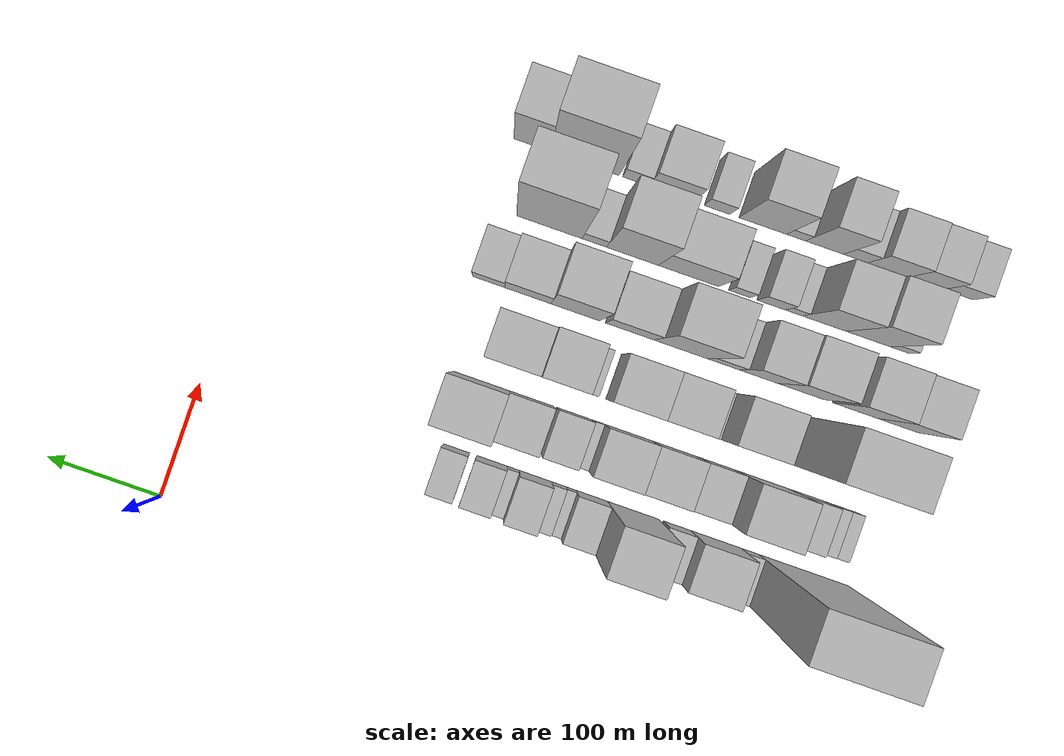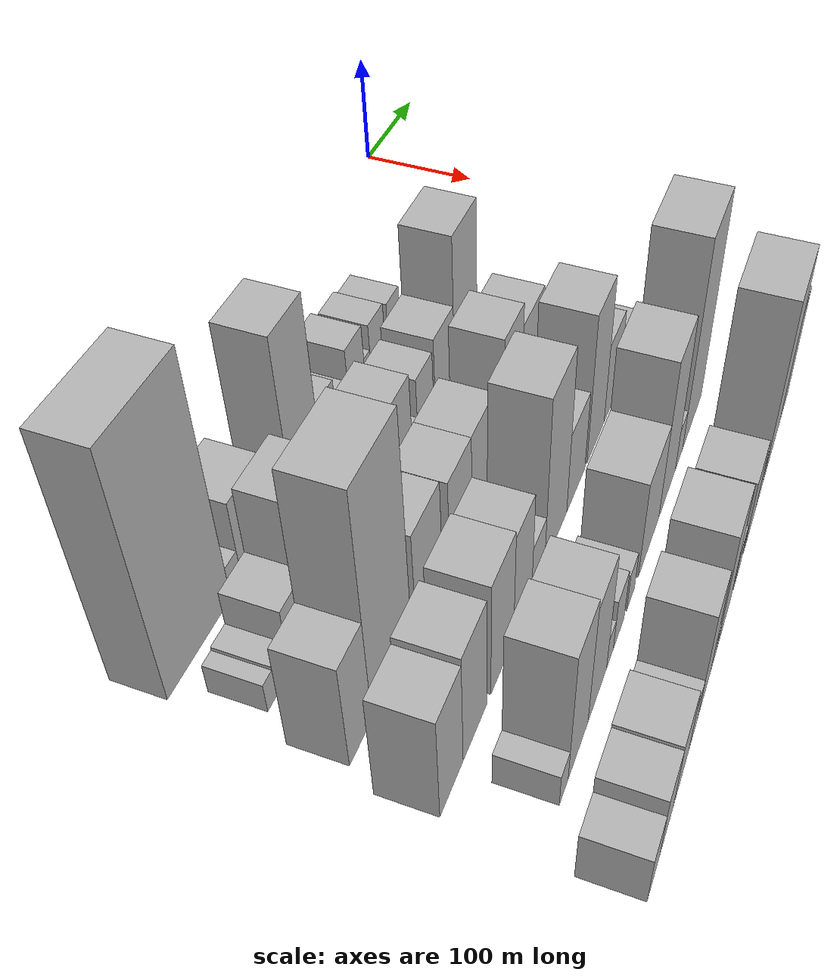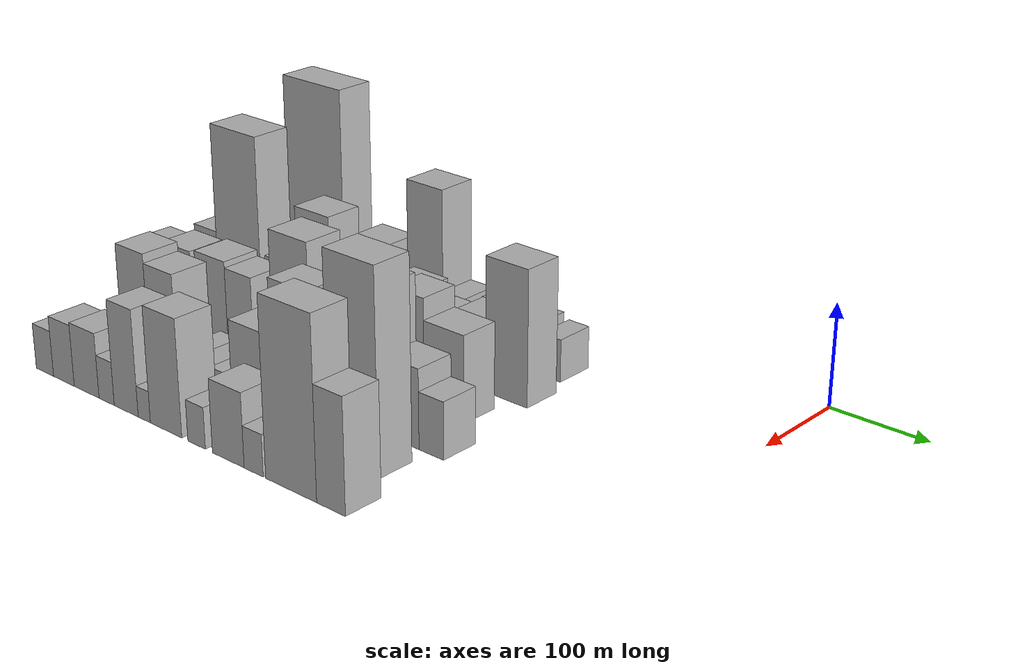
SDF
<sdf version="1.6">
 <world name="default">
  <model name="building_13">
   <static>1</static>
   <pose>100.0000 -526.7478 0 0.000000 0.000000 0.000000</pose>
   <link name="link">
    <pose>0 0 109.50 0 0 0</pose>
    <collision name="collision"><geometry><box><size>40.0000 79.1632 219.0000</size></box></geometry></collision>
    <visual name="visual">
     <cast_shadows>0</cast_shadows>
     <geometry><box><size>40.0000 79.1632 219.0000</size></box></geometry>
     <material>
      <script>
       <uri>model://HANNAS_wall/materials/scripts</uri>
       <uri>model://HANNAS_wall/materials/textures</uri>
       <name>vrc/HANNAS_wall</name>
      </script>
     </material>
    </visual>
   </link>
  </model>
  <model name="building_14">
   <static>1</static>
   <pose>100.0000 -479.6001 0 0.000000 0.000000 0.000000</pose>
   <link name="link">
    <pose>0 0 15.00 0 0 0</pose>
    <collision name="collision"><geometry><box><size>40.0000 15.1322 30.0000</size></box></geometry></collision>
    <visual name="visual">
     <cast_shadows>0</cast_shadows>
     <geometry><box><size>40.0000 15.1322 30.0000</size></box></geometry>
     <material>
      <script>
       <uri>model://HANNAS_wall/materials/scripts</uri>
       <uri>model://HANNAS_wall/materials/textures</uri>
       <name>vrc/HANNAS_wall</name>
      </script>
     </material>
    </visual>
   </link>
  </model>
  <model name="building_15">
   <static>1</static>
   <pose>100.0000 -449.6756 0 0.000000 0.000000 0.000000</pose>
   <link name="link">
    <pose>0 0 37.50 0 0 0</pose>
    <collision name="collision"><geometry><box><size>40.0000 44.7167 75.0000</size></box></geometry></collision>
    <visual name="visual">
     <cast_shadows>0</cast_shadows>
     <geometry><box><size>40.0000 44.7167 75.0000</size></box></geometry>
     <material>
      <script>
       <uri>model://HANNAS_wall/materials/scripts</uri>
       <uri>model://HANNAS_wall/materials/textures</uri>
       <name>vrc/HANNAS_wall</name>
      </script>
     </material>
    </visual>
   </link>
  </model>
  <model name="building_16">
   <static>1</static>
   <pose>100.0000 -415.2296 0 0.000000 0.000000 0.000000</pose>
   <link name="link">
    <pose>0 0 21.00 0 0 0</pose>
    <collision name="collision"><geometry><box><size>40.0000 24.1753 42.0000</size></box></geometry></collision>
    <visual name="visual">
     <cast_shadows>0</cast_shadows>
     <geometry><box><size>40.0000 24.1753 42.0000</size></box></geometry>
     <material>
      <script>
       <uri>model://HANNAS_wall/materials/scripts</uri>
       <uri>model://HANNAS_wall/materials/textures</uri>
       <name>vrc/HANNAS_wall</name>
      </script>
     </material>
    </visual>
   </link>
  </model>
  <model name="building_17">
   <static>1</static>
   <pose>100.0000 -376.3590 0 0.000000 0.000000 0.000000</pose>
   <link name="link">
    <pose>0 0 75.00 0 0 0</pose>
    <collision name="collision"><geometry><box><size>40.0000 45.5659 150.0000</size></box></geometry></collision>
    <visual name="visual">
     <cast_shadows>0</cast_shadows>
     <geometry><box><size>40.0000 45.5659 150.0000</size></box></geometry>
     <material>
      <script>
       <uri>model://HANNAS_wall/materials/scripts</uri>
       <uri>model://HANNAS_wall/materials/textures</uri>
       <name>vrc/HANNAS_wall</name>
      </script>
     </material>
    </visual>
   </link>
  </model>
  <model name="building_18">
   <static>1</static>
   <pose>100.0000 -339.6521 0 0.000000 0.000000 0.000000</pose>
   <link name="link">
    <pose>0 0 24.00 0 0 0</pose>
    <collision name="collision"><geometry><box><size>40.0000 27.8479 48.0000</size></box></geometry></collision>
    <visual name="visual">
     <cast_shadows>0</cast_shadows>
     <geometry><box><size>40.0000 27.8479 48.0000</size></box></geometry>
     <material>
      <script>
       <uri>model://HANNAS_wall/materials/scripts</uri>
       <uri>model://HANNAS_wall/materials/textures</uri>
       <name>vrc/HANNAS_wall</name>
      </script>
     </material>
    </visual>
   </link>
  </model>
  <model name="building_19">
   <static>1</static>
   <pose>100.0000 -321.3916 0 0.000000 0.000000 0.000000</pose>
   <link name="link">
    <pose>0 0 10.50 0 0 0</pose>
    <collision name="collision"><geometry><box><size>40.0000 8.6731 21.0000</size></box></geometry></collision>
    <visual name="visual">
     <cast_shadows>0</cast_shadows>
     <geometry><box><size>40.0000 8.6731 21.0000</size></box></geometry>
     <material>
      <script>
       <uri>model://HANNAS_wall/materials/scripts</uri>
       <uri>model://HANNAS_wall/materials/textures</uri>
       <name>vrc/HANNAS_wall</name>
      </script>
     </material>
    </visual>
   </link>
  </model>
  <model name="building_20">
   <static>1</static>
   <pose>100.0000 -310.6062 0 0.000000 0.000000 0.000000</pose>
   <link name="link">
    <pose>0 0 13.50 0 0 0</pose>
    <collision name="collision"><geometry><box><size>40.0000 12.8976 27.0000</size></box></geometry></collision>
    <visual name="visual">
     <cast_shadows>0</cast_shadows>
     <geometry><box><size>40.0000 12.8976 27.0000</size></box></geometry>
     <material>
      <script>
       <uri>model://HANNAS_wall/materials/scripts</uri>
       <uri>model://HANNAS_wall/materials/textures</uri>
       <name>vrc/HANNAS_wall</name>
      </script>
     </material>
    </visual>
   </link>
  </model>
  <model name="building_21">
   <static>1</static>
   <pose>100.0000 -289.8967 0 0.000000 0.000000 0.000000</pose>
   <link name="link">
    <pose>0 0 28.50 0 0 0</pose>
    <collision name="collision"><geometry><box><size>40.0000 28.5214 57.0000</size></box></geometry></collision>
    <visual name="visual">
     <cast_shadows>0</cast_shadows>
     <geometry><box><size>40.0000 28.5214 57.0000</size></box></geometry>
     <material>
      <script>
       <uri>model://HANNAS_wall/materials/scripts</uri>
       <uri>model://HANNAS_wall/materials/textures</uri>
       <name>vrc/HANNAS_wall</name>
      </script>
     </material>
    </visual>
   </link>
  </model>
  <model name="building_22">
   <static>1</static>
   <pose>100.0000 -270.2355 0 0.000000 0.000000 0.000000</pose>
   <link name="link">
    <pose>0 0 12.00 0 0 0</pose>
    <collision name="collision"><geometry><box><size>40.0000 10.8011 24.0000</size></box></geometry></collision>
    <visual name="visual">
     <cast_shadows>0</cast_shadows>
     <geometry><box><size>40.0000 10.8011 24.0000</size></box></geometry>
     <material>
      <script>
       <uri>model://HANNAS_wall/materials/scripts</uri>
       <uri>model://HANNAS_wall/materials/textures</uri>
       <name>vrc/HANNAS_wall</name>
      </script>
     </material>
    </visual>
   </link>
  </model>
  <model name="building_23">
   <static>1</static>
   <pose>100.0000 -251.3677 0 0.000000 0.000000 0.000000</pose>
   <link name="link">
    <pose>0 0 24.00 0 0 0</pose>
    <collision name="collision"><geometry><box><size>40.0000 26.9344 48.0000</size></box></geometry></collision>
    <visual name="visual">
     <cast_shadows>0</cast_shadows>
     <geometry><box><size>40.0000 26.9344 48.0000</size></box></geometry>
     <material>
      <script>
       <uri>model://HANNAS_wall/materials/scripts</uri>
       <uri>model://HANNAS_wall/materials/textures</uri>
       <name>vrc/HANNAS_wall</name>
      </script>
     </material>
    </visual>
   </link>
  </model>
  <model name="building_24">
   <static>1</static>
   <pose>100.0000 -220.2358 0 0.000000 0.000000 0.000000</pose>
   <link name="link">
    <pose>0 0 21.00 0 0 0</pose>
    <collision name="collision"><geometry><box><size>40.0000 23.3294 42.0000</size></box></geometry></collision>
    <visual name="visual">
     <cast_shadows>0</cast_shadows>
     <geometry><box><size>40.0000 23.3294 42.0000</size></box></geometry>
     <material>
      <script>
       <uri>model://HANNAS_wall/materials/scripts</uri>
       <uri>model://HANNAS_wall/materials/textures</uri>
       <name>vrc/HANNAS_wall</name>
      </script>
     </material>
    </visual>
   </link>
  </model>
  <model name="building_71">
   <static>1</static>
   <pose>160.0000 -547.1746 0 0.000000 0.000000 0.000000</pose>
   <link name="link">
    <pose>0 0 13.50 0 0 0</pose>
    <collision name="collision"><geometry><box><size>40.0000 11.5638 27.0000</size></box></geometry></collision>
    <visual name="visual">
     <cast_shadows>0</cast_shadows>
     <geometry><box><size>40.0000 11.5638 27.0000</size></box></geometry>
     <material>
      <script>
       <uri>model://HANNAS_wall/materials/scripts</uri>
       <uri>model://HANNAS_wall/materials/textures</uri>
       <name>vrc/HANNAS_wall</name>
      </script>
     </material>
    </visual>
   </link>
  </model>
  <model name="building_72">
   <static>1</static>
   <pose>160.0000 -532.4217 0 0.000000 0.000000 0.000000</pose>
   <link name="link">
    <pose>0 0 15.00 0 0 0</pose>
    <collision name="collision"><geometry><box><size>40.0000 17.9421 30.0000</size></box></geometry></collision>
    <visual name="visual">
     <cast_shadows>0</cast_shadows>
     <geometry><box><size>40.0000 17.9421 30.0000</size></box></geometry>
     <material>
      <script>
       <uri>model://HANNAS_wall/materials/scripts</uri>
       <uri>model://HANNAS_wall/materials/textures</uri>
       <name>vrc/HANNAS_wall</name>
      </script>
     </material>
    </visual>
   </link>
  </model>
  <model name="building_73">
   <static>1</static>
   <pose>160.0000 -507.1314 0 0.000000 0.000000 0.000000</pose>
   <link name="link">
    <pose>0 0 30.00 0 0 0</pose>
    <collision name="collision"><geometry><box><size>40.0000 32.6385 60.0000</size></box></geometry></collision>
    <visual name="visual">
     <cast_shadows>0</cast_shadows>
     <geometry><box><size>40.0000 32.6385 60.0000</size></box></geometry>
     <material>
      <script>
       <uri>model://HANNAS_wall/materials/scripts</uri>
       <uri>model://HANNAS_wall/materials/textures</uri>
       <name>vrc/HANNAS_wall</name>
      </script>
     </material>
    </visual>
   </link>
  </model>
  <model name="building_74">
   <static>1</static>
   <pose>160.0000 -467.6088 0 0.000000 0.000000 0.000000</pose>
   <link name="link">
    <pose>0 0 58.50 0 0 0</pose>
    <collision name="collision"><geometry><box><size>40.0000 46.4066 117.0000</size></box></geometry></collision>
    <visual name="visual">
     <cast_shadows>0</cast_shadows>
     <geometry><box><size>40.0000 46.4066 117.0000</size></box></geometry>
     <material>
      <script>
       <uri>model://HANNAS_wall/materials/scripts</uri>
       <uri>model://HANNAS_wall/materials/textures</uri>
       <name>vrc/HANNAS_wall</name>
      </script>
     </material>
    </visual>
   </link>
  </model>
  <model name="building_75">
   <static>1</static>
   <pose>160.0000 -428.1133 0 0.000000 0.000000 0.000000</pose>
   <link name="link">
    <pose>0 0 31.50 0 0 0</pose>
    <collision name="collision"><geometry><box><size>40.0000 32.5844 63.0000</size></box></geometry></collision>
    <visual name="visual">
     <cast_shadows>0</cast_shadows>
     <geometry><box><size>40.0000 32.5844 63.0000</size></box></geometry>
     <material>
      <script>
       <uri>model://HANNAS_wall/materials/scripts</uri>
       <uri>model://HANNAS_wall/materials/textures</uri>
       <name>vrc/HANNAS_wall</name>
      </script>
     </material>
    </visual>
   </link>
  </model>
  <model name="building_76">
   <static>1</static>
   <pose>160.0000 -391.2754 0 0.000000 0.000000 0.000000</pose>
   <link name="link">
    <pose>0 0 34.50 0 0 0</pose>
    <collision name="collision"><geometry><box><size>40.0000 41.0915 69.0000</size></box></geometry></collision>
    <visual name="visual">
     <cast_shadows>0</cast_shadows>
     <geometry><box><size>40.0000 41.0915 69.0000</size></box></geometry>
     <material>
      <script>
       <uri>model://HANNAS_wall/materials/scripts</uri>
       <uri>model://HANNAS_wall/materials/textures</uri>
       <name>vrc/HANNAS_wall</name>
      </script>
     </material>
    </visual>
   </link>
  </model>
  <model name="building_77">
   <static>1</static>
   <pose>160.0000 -349.5944 0 0.000000 0.000000 0.000000</pose>
   <link name="link">
    <pose>0 0 37.50 0 0 0</pose>
    <collision name="collision"><geometry><box><size>40.0000 42.2706 75.0000</size></box></geometry></collision>
    <visual name="visual">
     <cast_shadows>0</cast_shadows>
     <geometry><box><size>40.0000 42.2706 75.0000</size></box></geometry>
     <material>
      <script>
       <uri>model://HANNAS_wall/materials/scripts</uri>
       <uri>model://HANNAS_wall/materials/textures</uri>
       <name>vrc/HANNAS_wall</name>
      </script>
     </material>
    </visual>
   </link>
  </model>
  <model name="building_78">
   <static>1</static>
   <pose>160.0000 -323.1259 0 0.000000 0.000000 0.000000</pose>
   <link name="link">
    <pose>0 0 12.00 0 0 0</pose>
    <collision name="collision"><geometry><box><size>40.0000 10.6664 24.0000</size></box></geometry></collision>
    <visual name="visual">
     <cast_shadows>0</cast_shadows>
     <geometry><box><size>40.0000 10.6664 24.0000</size></box></geometry>
     <material>
      <script>
       <uri>model://HANNAS_wall/materials/scripts</uri>
       <uri>model://HANNAS_wall/materials/textures</uri>
       <name>vrc/HANNAS_wall</name>
      </script>
     </material>
    </visual>
   </link>
  </model>
  <model name="building_79">
   <static>1</static>
   <pose>160.0000 -302.6198 0 0.000000 0.000000 0.000000</pose>
   <link name="link">
    <pose>0 0 30.00 0 0 0</pose>
    <collision name="collision"><geometry><box><size>40.0000 30.3458 60.0000</size></box></geometry></collision>
    <visual name="visual">
     <cast_shadows>0</cast_shadows>
     <geometry><box><size>40.0000 30.3458 60.0000</size></box></geometry>
     <material>
      <script>
       <uri>model://HANNAS_wall/materials/scripts</uri>
       <uri>model://HANNAS_wall/materials/textures</uri>
       <name>vrc/HANNAS_wall</name>
      </script>
     </material>
    </visual>
   </link>
  </model>
  <model name="building_80">
   <static>1</static>
   <pose>160.0000 -265.0038 0 0.000000 0.000000 0.000000</pose>
   <link name="link">
    <pose>0 0 34.50 0 0 0</pose>
    <collision name="collision"><geometry><box><size>40.0000 38.8863 69.0000</size></box></geometry></collision>
    <visual name="visual">
     <cast_shadows>0</cast_shadows>
     <geometry><box><size>40.0000 38.8863 69.0000</size></box></geometry>
     <material>
      <script>
       <uri>model://HANNAS_wall/materials/scripts</uri>
       <uri>model://HANNAS_wall/materials/textures</uri>
       <name>vrc/HANNAS_wall</name>
      </script>
     </material>
    </visual>
   </link>
  </model>
  <model name="building_81">
   <static>1</static>
   <pose>160.0000 -221.2060 0 0.000000 0.000000 0.000000</pose>
   <link name="link">
    <pose>0 0 66.00 0 0 0</pose>
    <collision name="collision"><geometry><box><size>40.0000 48.7094 132.0000</size></box></geometry></collision>
    <visual name="visual">
     <cast_shadows>0</cast_shadows>
     <geometry><box><size>40.0000 48.7094 132.0000</size></box></geometry>
     <material>
      <script>
       <uri>model://HANNAS_wall/materials/scripts</uri>
       <uri>model://HANNAS_wall/materials/textures</uri>
       <name>vrc/HANNAS_wall</name>
      </script>
     </material>
    </visual>
   </link>
  </model>
  <model name="building_128">
   <static>1</static>
   <pose>220.0000 -552.4723 0 0.000000 0.000000 0.000000</pose>
   <link name="link">
    <pose>0 0 48.00 0 0 0</pose>
    <collision name="collision"><geometry><box><size>40.0000 31.9358 96.0000</size></box></geometry></collision>
    <visual name="visual">
     <cast_shadows>0</cast_shadows>
     <geometry><box><size>40.0000 31.9358 96.0000</size></box></geometry>
     <material>
      <script>
       <uri>model://HANNAS_wall/materials/scripts</uri>
       <uri>model://HANNAS_wall/materials/textures</uri>
       <name>vrc/HANNAS_wall</name>
      </script>
     </material>
    </visual>
   </link>
  </model>
  <model name="building_129">
   <static>1</static>
   <pose>220.0000 -505.7605 0 0.000000 0.000000 0.000000</pose>
   <link name="link">
    <pose>0 0 102.00 0 0 0</pose>
    <collision name="collision"><geometry><box><size>40.0000 61.4878 204.0000</size></box></geometry></collision>
    <visual name="visual">
     <cast_shadows>0</cast_shadows>
     <geometry><box><size>40.0000 61.4878 204.0000</size></box></geometry>
     <material>
      <script>
       <uri>model://HANNAS_wall/materials/scripts</uri>
       <uri>model://HANNAS_wall/materials/textures</uri>
       <name>vrc/HANNAS_wall</name>
      </script>
     </material>
    </visual>
   </link>
  </model>
  <model name="building_130">
   <static>1</static>
   <pose>220.0000 -445.4378 0 0.000000 0.000000 0.000000</pose>
   <link name="link">
    <pose>0 0 45.00 0 0 0</pose>
    <collision name="collision"><geometry><box><size>40.0000 45.1576 90.0000</size></box></geometry></collision>
    <visual name="visual">
     <cast_shadows>0</cast_shadows>
     <geometry><box><size>40.0000 45.1576 90.0000</size></box></geometry>
     <material>
      <script>
       <uri>model://HANNAS_wall/materials/scripts</uri>
       <uri>model://HANNAS_wall/materials/textures</uri>
       <name>vrc/HANNAS_wall</name>
      </script>
     </material>
    </visual>
   </link>
  </model>
  <model name="building_131">
   <static>1</static>
   <pose>220.0000 -418.5740 0 0.000000 0.000000 0.000000</pose>
   <link name="link">
    <pose>0 0 9.00 0 0 0</pose>
    <collision name="collision"><geometry><box><size>40.0000 8.5701 18.0000</size></box></geometry></collision>
    <visual name="visual">
     <cast_shadows>0</cast_shadows>
     <geometry><box><size>40.0000 8.5701 18.0000</size></box></geometry>
     <material>
      <script>
       <uri>model://HANNAS_wall/materials/scripts</uri>
       <uri>model://HANNAS_wall/materials/textures</uri>
       <name>vrc/HANNAS_wall</name>
      </script>
     </material>
    </visual>
   </link>
  </model>
  <model name="building_132">
   <static>1</static>
   <pose>220.0000 -389.3120 0 0.000000 0.000000 0.000000</pose>
   <link name="link">
    <pose>0 0 37.50 0 0 0</pose>
    <collision name="collision"><geometry><box><size>40.0000 41.9539 75.0000</size></box></geometry></collision>
    <visual name="visual">
     <cast_shadows>0</cast_shadows>
     <geometry><box><size>40.0000 41.9539 75.0000</size></box></geometry>
     <material>
      <script>
       <uri>model://HANNAS_wall/materials/scripts</uri>
       <uri>model://HANNAS_wall/materials/textures</uri>
       <name>vrc/HANNAS_wall</name>
      </script>
     </material>
    </visual>
   </link>
  </model>
  <model name="building_133">
   <static>1</static>
   <pose>220.0000 -346.2086 0 0.000000 0.000000 0.000000</pose>
   <link name="link">
    <pose>0 0 37.50 0 0 0</pose>
    <collision name="collision"><geometry><box><size>40.0000 44.2529 75.0000</size></box></geometry></collision>
    <visual name="visual">
     <cast_shadows>0</cast_shadows>
     <geometry><box><size>40.0000 44.2529 75.0000</size></box></geometry>
     <material>
      <script>
       <uri>model://HANNAS_wall/materials/scripts</uri>
       <uri>model://HANNAS_wall/materials/textures</uri>
       <name>vrc/HANNAS_wall</name>
      </script>
     </material>
    </visual>
   </link>
  </model>
  <model name="building_134">
   <static>1</static>
   <pose>220.0000 -310.3912 0 0.000000 0.000000 0.000000</pose>
   <link name="link">
    <pose>0 0 13.50 0 0 0</pose>
    <collision name="collision"><geometry><box><size>40.0000 11.3818 27.0000</size></box></geometry></collision>
    <visual name="visual">
     <cast_shadows>0</cast_shadows>
     <geometry><box><size>40.0000 11.3818 27.0000</size></box></geometry>
     <material>
      <script>
       <uri>model://HANNAS_wall/materials/scripts</uri>
       <uri>model://HANNAS_wall/materials/textures</uri>
       <name>vrc/HANNAS_wall</name>
      </script>
     </material>
    </visual>
   </link>
  </model>
  <model name="building_135">
   <static>1</static>
   <pose>220.0000 -284.7197 0 0.000000 0.000000 0.000000</pose>
   <link name="link">
    <pose>0 0 52.50 0 0 0</pose>
    <collision name="collision"><geometry><box><size>40.0000 39.9612 105.0000</size></box></geometry></collision>
    <visual name="visual">
     <cast_shadows>0</cast_shadows>
     <geometry><box><size>40.0000 39.9612 105.0000</size></box></geometry>
     <material>
      <script>
       <uri>model://HANNAS_wall/materials/scripts</uri>
       <uri>model://HANNAS_wall/materials/textures</uri>
       <name>vrc/HANNAS_wall</name>
      </script>
     </material>
    </visual>
   </link>
  </model>
  <model name="building_136">
   <static>1</static>
   <pose>220.0000 -241.1494 0 0.000000 0.000000 0.000000</pose>
   <link name="link">
    <pose>0 0 42.00 0 0 0</pose>
    <collision name="collision"><geometry><box><size>40.0000 47.1794 84.0000</size></box></geometry></collision>
    <visual name="visual">
     <cast_shadows>0</cast_shadows>
     <geometry><box><size>40.0000 47.1794 84.0000</size></box></geometry>
     <material>
      <script>
       <uri>model://HANNAS_wall/materials/scripts</uri>
       <uri>model://HANNAS_wall/materials/textures</uri>
       <name>vrc/HANNAS_wall</name>
      </script>
     </material>
    </visual>
   </link>
  </model>
  <model name="building_180">
   <static>1</static>
   <pose>280.0000 -561.4519 0 0.000000 0.000000 0.000000</pose>
   <link name="link">
    <pose>0 0 48.00 0 0 0</pose>
    <collision name="collision"><geometry><box><size>40.0000 36.4354 96.0000</size></box></geometry></collision>
    <visual name="visual">
     <cast_shadows>0</cast_shadows>
     <geometry><box><size>40.0000 36.4354 96.0000</size></box></geometry>
     <material>
      <script>
       <uri>model://HANNAS_wall/materials/scripts</uri>
       <uri>model://HANNAS_wall/materials/textures</uri>
       <name>vrc/HANNAS_wall</name>
      </script>
     </material>
    </visual>
   </link>
  </model>
  <model name="building_181">
   <static>1</static>
   <pose>280.0000 -523.3913 0 0.000000 0.000000 0.000000</pose>
   <link name="link">
    <pose>0 0 51.00 0 0 0</pose>
    <collision name="collision"><geometry><box><size>40.0000 39.6857 102.0000</size></box></geometry></collision>
    <visual name="visual">
     <cast_shadows>0</cast_shadows>
     <geometry><box><size>40.0000 39.6857 102.0000</size></box></geometry>
     <material>
      <script>
       <uri>model://HANNAS_wall/materials/scripts</uri>
       <uri>model://HANNAS_wall/materials/textures</uri>
       <name>vrc/HANNAS_wall</name>
      </script>
     </material>
    </visual>
   </link>
  </model>
  <model name="building_182">
   <static>1</static>
   <pose>280.0000 -475.8327 0 0.000000 0.000000 0.000000</pose>
   <link name="link">
    <pose>0 0 52.50 0 0 0</pose>
    <collision name="collision"><geometry><box><size>40.0000 41.4316 105.0000</size></box></geometry></collision>
    <visual name="visual">
     <cast_shadows>0</cast_shadows>
     <geometry><box><size>40.0000 41.4316 105.0000</size></box></geometry>
     <material>
      <script>
       <uri>model://HANNAS_wall/materials/scripts</uri>
       <uri>model://HANNAS_wall/materials/textures</uri>
       <name>vrc/HANNAS_wall</name>
      </script>
     </material>
    </visual>
   </link>
  </model>
  <model name="building_183">
   <static>1</static>
   <pose>280.0000 -437.6139 0 0.000000 0.000000 0.000000</pose>
   <link name="link">
    <pose>0 0 49.50 0 0 0</pose>
    <collision name="collision"><geometry><box><size>40.0000 35.0060 99.0000</size></box></geometry></collision>
    <visual name="visual">
     <cast_shadows>0</cast_shadows>
     <geometry><box><size>40.0000 35.0060 99.0000</size></box></geometry>
     <material>
      <script>
       <uri>model://HANNAS_wall/materials/scripts</uri>
       <uri>model://HANNAS_wall/materials/textures</uri>
       <name>vrc/HANNAS_wall</name>
      </script>
     </material>
    </visual>
   </link>
  </model>
  <model name="building_184">
   <static>1</static>
   <pose>280.0000 -406.7526 0 0.000000 0.000000 0.000000</pose>
   <link name="link">
    <pose>0 0 24.00 0 0 0</pose>
    <collision name="collision"><geometry><box><size>40.0000 26.7167 48.0000</size></box></geometry></collision>
    <visual name="visual">
     <cast_shadows>0</cast_shadows>
     <geometry><box><size>40.0000 26.7167 48.0000</size></box></geometry>
     <material>
      <script>
       <uri>model://HANNAS_wall/materials/scripts</uri>
       <uri>model://HANNAS_wall/materials/textures</uri>
       <name>vrc/HANNAS_wall</name>
      </script>
     </material>
    </visual>
   </link>
  </model>
  <model name="building_185">
   <static>1</static>
   <pose>280.0000 -369.2548 0 0.000000 0.000000 0.000000</pose>
   <link name="link">
    <pose>0 0 76.50 0 0 0</pose>
    <collision name="collision"><geometry><box><size>40.0000 48.2788 153.0000</size></box></geometry></collision>
    <visual name="visual">
     <cast_shadows>0</cast_shadows>
     <geometry><box><size>40.0000 48.2788 153.0000</size></box></geometry>
     <material>
      <script>
       <uri>model://HANNAS_wall/materials/scripts</uri>
       <uri>model://HANNAS_wall/materials/textures</uri>
       <name>vrc/HANNAS_wall</name>
      </script>
     </material>
    </visual>
   </link>
  </model>
  <model name="building_186">
   <static>1</static>
   <pose>280.0000 -323.8007 0 0.000000 0.000000 0.000000</pose>
   <link name="link">
    <pose>0 0 37.50 0 0 0</pose>
    <collision name="collision"><geometry><box><size>40.0000 42.6294 75.0000</size></box></geometry></collision>
    <visual name="visual">
     <cast_shadows>0</cast_shadows>
     <geometry><box><size>40.0000 42.6294 75.0000</size></box></geometry>
     <material>
      <script>
       <uri>model://HANNAS_wall/materials/scripts</uri>
       <uri>model://HANNAS_wall/materials/textures</uri>
       <name>vrc/HANNAS_wall</name>
      </script>
     </material>
    </visual>
   </link>
  </model>
  <model name="building_187">
   <static>1</static>
   <pose>280.0000 -275.9442 0 0.000000 0.000000 0.000000</pose>
   <link name="link">
    <pose>0 0 69.00 0 0 0</pose>
    <collision name="collision"><geometry><box><size>40.0000 43.0835 138.0000</size></box></geometry></collision>
    <visual name="visual">
     <cast_shadows>0</cast_shadows>
     <geometry><box><size>40.0000 43.0835 138.0000</size></box></geometry>
     <material>
      <script>
       <uri>model://HANNAS_wall/materials/scripts</uri>
       <uri>model://HANNAS_wall/materials/textures</uri>
       <name>vrc/HANNAS_wall</name>
      </script>
     </material>
    </visual>
   </link>
  </model>
  <model name="building_188">
   <static>1</static>
   <pose>280.0000 -234.1982 0 0.000000 0.000000 0.000000</pose>
   <link name="link">
    <pose>0 0 37.50 0 0 0</pose>
    <collision name="collision"><geometry><box><size>40.0000 40.4085 75.0000</size></box></geometry></collision>
    <visual name="visual">
     <cast_shadows>0</cast_shadows>
     <geometry><box><size>40.0000 40.4085 75.0000</size></box></geometry>
     <material>
      <script>
       <uri>model://HANNAS_wall/materials/scripts</uri>
       <uri>model://HANNAS_wall/materials/textures</uri>
       <name>vrc/HANNAS_wall</name>
      </script>
     </material>
    </visual>
   </link>
  </model>
  <model name="building_189">
   <static>1</static>
   <pose>280.0000 -199.8114 0 0.000000 0.000000 0.000000</pose>
   <link name="link">
    <pose>0 0 27.00 0 0 0</pose>
    <collision name="collision"><geometry><box><size>40.0000 28.3650 54.0000</size></box></geometry></collision>
    <visual name="visual">
     <cast_shadows>0</cast_shadows>
     <geometry><box><size>40.0000 28.3650 54.0000</size></box></geometry>
     <material>
      <script>
       <uri>model://HANNAS_wall/materials/scripts</uri>
       <uri>model://HANNAS_wall/materials/textures</uri>
       <name>vrc/HANNAS_wall</name>
      </script>
     </material>
    </visual>
   </link>
  </model>
  <model name="building_230">
   <static>1</static>
   <pose>340.0000 -541.9302 0 0.000000 0.000000 0.000000</pose>
   <link name="link">
    <pose>0 0 15.00 0 0 0</pose>
    <collision name="collision"><geometry><box><size>40.0000 16.4226 30.0000</size></box></geometry></collision>
    <visual name="visual">
     <cast_shadows>0</cast_shadows>
     <geometry><box><size>40.0000 16.4226 30.0000</size></box></geometry>
     <material>
      <script>
       <uri>model://HANNAS_wall/materials/scripts</uri>
       <uri>model://HANNAS_wall/materials/textures</uri>
       <name>vrc/HANNAS_wall</name>
      </script>
     </material>
    </visual>
   </link>
  </model>
  <model name="building_231">
   <static>1</static>
   <pose>340.0000 -514.2004 0 0.000000 0.000000 0.000000</pose>
   <link name="link">
    <pose>0 0 60.00 0 0 0</pose>
    <collision name="collision"><geometry><box><size>40.0000 39.0370 120.0000</size></box></geometry></collision>
    <visual name="visual">
     <cast_shadows>0</cast_shadows>
     <geometry><box><size>40.0000 39.0370 120.0000</size></box></geometry>
     <material>
      <script>
       <uri>model://HANNAS_wall/materials/scripts</uri>
       <uri>model://HANNAS_wall/materials/textures</uri>
       <name>vrc/HANNAS_wall</name>
      </script>
     </material>
    </visual>
   </link>
  </model>
  <model name="building_232">
   <static>1</static>
   <pose>340.0000 -475.1679 0 0.000000 0.000000 0.000000</pose>
   <link name="link">
    <pose>0 0 55.50 0 0 0</pose>
    <collision name="collision"><geometry><box><size>40.0000 39.0281 111.0000</size></box></geometry></collision>
    <visual name="visual">
     <cast_shadows>0</cast_shadows>
     <geometry><box><size>40.0000 39.0281 111.0000</size></box></geometry>
     <material>
      <script>
       <uri>model://HANNAS_wall/materials/scripts</uri>
       <uri>model://HANNAS_wall/materials/textures</uri>
       <name>vrc/HANNAS_wall</name>
      </script>
     </material>
    </visual>
   </link>
  </model>
  <model name="building_233">
   <static>1</static>
   <pose>340.0000 -448.1190 0 0.000000 0.000000 0.000000</pose>
   <link name="link">
    <pose>0 0 15.00 0 0 0</pose>
    <collision name="collision"><geometry><box><size>40.0000 15.0698 30.0000</size></box></geometry></collision>
    <visual name="visual">
     <cast_shadows>0</cast_shadows>
     <geometry><box><size>40.0000 15.0698 30.0000</size></box></geometry>
     <material>
      <script>
       <uri>model://HANNAS_wall/materials/scripts</uri>
       <uri>model://HANNAS_wall/materials/textures</uri>
       <name>vrc/HANNAS_wall</name>
      </script>
     </material>
    </visual>
   </link>
  </model>
  <model name="building_234">
   <static>1</static>
   <pose>340.0000 -428.1554 0 0.000000 0.000000 0.000000</pose>
   <link name="link">
    <pose>0 0 24.00 0 0 0</pose>
    <collision name="collision"><geometry><box><size>40.0000 24.8574 48.0000</size></box></geometry></collision>
    <visual name="visual">
     <cast_shadows>0</cast_shadows>
     <geometry><box><size>40.0000 24.8574 48.0000</size></box></geometry>
     <material>
      <script>
       <uri>model://HANNAS_wall/materials/scripts</uri>
       <uri>model://HANNAS_wall/materials/textures</uri>
       <name>vrc/HANNAS_wall</name>
      </script>
     </material>
    </visual>
   </link>
  </model>
  <model name="building_235">
   <static>1</static>
   <pose>340.0000 -400.2562 0 0.000000 0.000000 0.000000</pose>
   <link name="link">
    <pose>0 0 18.00 0 0 0</pose>
    <collision name="collision"><geometry><box><size>40.0000 18.9411 36.0000</size></box></geometry></collision>
    <visual name="visual">
     <cast_shadows>0</cast_shadows>
     <geometry><box><size>40.0000 18.9411 36.0000</size></box></geometry>
     <material>
      <script>
       <uri>model://HANNAS_wall/materials/scripts</uri>
       <uri>model://HANNAS_wall/materials/textures</uri>
       <name>vrc/HANNAS_wall</name>
      </script>
     </material>
    </visual>
   </link>
  </model>
  <model name="building_236">
   <static>1</static>
   <pose>340.0000 -355.1814 0 0.000000 0.000000 0.000000</pose>
   <link name="link">
    <pose>0 0 45.00 0 0 0</pose>
    <collision name="collision"><geometry><box><size>40.0000 53.2085 90.0000</size></box></geometry></collision>
    <visual name="visual">
     <cast_shadows>0</cast_shadows>
     <geometry><box><size>40.0000 53.2085 90.0000</size></box></geometry>
     <material>
      <script>
       <uri>model://HANNAS_wall/materials/scripts</uri>
       <uri>model://HANNAS_wall/materials/textures</uri>
       <name>vrc/HANNAS_wall</name>
      </script>
     </material>
    </visual>
   </link>
  </model>
  <model name="building_237">
   <static>1</static>
   <pose>340.0000 -305.4862 0 0.000000 0.000000 0.000000</pose>
   <link name="link">
    <pose>0 0 72.00 0 0 0</pose>
    <collision name="collision"><geometry><box><size>40.0000 46.1819 144.0000</size></box></geometry></collision>
    <visual name="visual">
     <cast_shadows>0</cast_shadows>
     <geometry><box><size>40.0000 46.1819 144.0000</size></box></geometry>
     <material>
      <script>
       <uri>model://HANNAS_wall/materials/scripts</uri>
       <uri>model://HANNAS_wall/materials/textures</uri>
       <name>vrc/HANNAS_wall</name>
      </script>
     </material>
    </visual>
   </link>
  </model>
  <model name="building_238">
   <static>1</static>
   <pose>340.0000 -271.6953 0 0.000000 0.000000 0.000000</pose>
   <link name="link">
    <pose>0 0 19.50 0 0 0</pose>
    <collision name="collision"><geometry><box><size>40.0000 21.4000 39.0000</size></box></geometry></collision>
    <visual name="visual">
     <cast_shadows>0</cast_shadows>
     <geometry><box><size>40.0000 21.4000 39.0000</size></box></geometry>
     <material>
      <script>
       <uri>model://HANNAS_wall/materials/scripts</uri>
       <uri>model://HANNAS_wall/materials/textures</uri>
       <name>vrc/HANNAS_wall</name>
      </script>
     </material>
    </visual>
   </link>
  </model>
  <model name="building_239">
   <static>1</static>
   <pose>340.0000 -232.0114 0 0.000000 0.000000 0.000000</pose>
   <link name="link">
    <pose>0 0 94.50 0 0 0</pose>
    <collision name="collision"><geometry><box><size>40.0000 57.9678 189.0000</size></box></geometry></collision>
    <visual name="visual">
     <cast_shadows>0</cast_shadows>
     <geometry><box><size>40.0000 57.9678 189.0000</size></box></geometry>
     <material>
      <script>
       <uri>model://HANNAS_wall/materials/scripts</uri>
       <uri>model://HANNAS_wall/materials/textures</uri>
       <name>vrc/HANNAS_wall</name>
      </script>
     </material>
    </visual>
   </link>
  </model>
  <model name="building_281">
   <static>1</static>
   <pose>400.0000 -573.1667 0 0.000000 0.000000 0.000000</pose>
   <link name="link">
    <pose>0 0 22.50 0 0 0</pose>
    <collision name="collision"><geometry><box><size>40.0000 26.1501 45.0000</size></box></geometry></collision>
    <visual name="visual">
     <cast_shadows>0</cast_shadows>
     <geometry><box><size>40.0000 26.1501 45.0000</size></box></geometry>
     <material>
      <script>
       <uri>model://HANNAS_wall/materials/scripts</uri>
       <uri>model://HANNAS_wall/materials/textures</uri>
       <name>vrc/HANNAS_wall</name>
      </script>
     </material>
    </visual>
   </link>
  </model>
  <model name="building_282">
   <static>1</static>
   <pose>400.0000 -544.5979 0 0.000000 0.000000 0.000000</pose>
   <link name="link">
    <pose>0 0 30.00 0 0 0</pose>
    <collision name="collision"><geometry><box><size>40.0000 30.9874 60.0000</size></box></geometry></collision>
    <visual name="visual">
     <cast_shadows>0</cast_shadows>
     <geometry><box><size>40.0000 30.9874 60.0000</size></box></geometry>
     <material>
      <script>
       <uri>model://HANNAS_wall/materials/scripts</uri>
       <uri>model://HANNAS_wall/materials/textures</uri>
       <name>vrc/HANNAS_wall</name>
      </script>
     </material>
    </visual>
   </link>
  </model>
  <model name="building_283">
   <static>1</static>
   <pose>400.0000 -511.0162 0 0.000000 0.000000 0.000000</pose>
   <link name="link">
    <pose>0 0 31.50 0 0 0</pose>
    <collision name="collision"><geometry><box><size>40.0000 36.1760 63.0000</size></box></geometry></collision>
    <visual name="visual">
     <cast_shadows>0</cast_shadows>
     <geometry><box><size>40.0000 36.1760 63.0000</size></box></geometry>
     <material>
      <script>
       <uri>model://HANNAS_wall/materials/scripts</uri>
       <uri>model://HANNAS_wall/materials/textures</uri>
       <name>vrc/HANNAS_wall</name>
      </script>
     </material>
    </visual>
   </link>
  </model>
  <model name="building_284">
   <static>1</static>
   <pose>400.0000 -482.0587 0 0.000000 0.000000 0.000000</pose>
   <link name="link">
    <pose>0 0 21.00 0 0 0</pose>
    <collision name="collision"><geometry><box><size>40.0000 21.7391 42.0000</size></box></geometry></collision>
    <visual name="visual">
     <cast_shadows>0</cast_shadows>
     <geometry><box><size>40.0000 21.7391 42.0000</size></box></geometry>
     <material>
      <script>
       <uri>model://HANNAS_wall/materials/scripts</uri>
       <uri>model://HANNAS_wall/materials/textures</uri>
       <name>vrc/HANNAS_wall</name>
      </script>
     </material>
    </visual>
   </link>
  </model>
  <model name="building_285">
   <static>1</static>
   <pose>400.0000 -454.4705 0 0.000000 0.000000 0.000000</pose>
   <link name="link">
    <pose>0 0 51.00 0 0 0</pose>
    <collision name="collision"><geometry><box><size>40.0000 33.4373 102.0000</size></box></geometry></collision>
    <visual name="visual">
     <cast_shadows>0</cast_shadows>
     <geometry><box><size>40.0000 33.4373 102.0000</size></box></geometry>
     <material>
      <script>
       <uri>model://HANNAS_wall/materials/scripts</uri>
       <uri>model://HANNAS_wall/materials/textures</uri>
       <name>vrc/HANNAS_wall</name>
      </script>
     </material>
    </visual>
   </link>
  </model>
  <model name="building_286">
   <static>1</static>
   <pose>400.0000 -429.3938 0 0.000000 0.000000 0.000000</pose>
   <link name="link">
    <pose>0 0 15.00 0 0 0</pose>
    <collision name="collision"><geometry><box><size>40.0000 16.7162 30.0000</size></box></geometry></collision>
    <visual name="visual">
     <cast_shadows>0</cast_shadows>
     <geometry><box><size>40.0000 16.7162 30.0000</size></box></geometry>
     <material>
      <script>
       <uri>model://HANNAS_wall/materials/scripts</uri>
       <uri>model://HANNAS_wall/materials/textures</uri>
       <name>vrc/HANNAS_wall</name>
      </script>
     </material>
    </visual>
   </link>
  </model>
  <model name="building_287">
   <static>1</static>
   <pose>400.0000 -399.9482 0 0.000000 0.000000 0.000000</pose>
   <link name="link">
    <pose>0 0 55.50 0 0 0</pose>
    <collision name="collision"><geometry><box><size>40.0000 42.1749 111.0000</size></box></geometry></collision>
    <visual name="visual">
     <cast_shadows>0</cast_shadows>
     <geometry><box><size>40.0000 42.1749 111.0000</size></box></geometry>
     <material>
      <script>
       <uri>model://HANNAS_wall/materials/scripts</uri>
       <uri>model://HANNAS_wall/materials/textures</uri>
       <name>vrc/HANNAS_wall</name>
      </script>
     </material>
    </visual>
   </link>
  </model>
  <model name="building_288">
   <static>1</static>
   <pose>400.0000 -359.4716 0 0.000000 0.000000 0.000000</pose>
   <link name="link">
    <pose>0 0 19.50 0 0 0</pose>
    <collision name="collision"><geometry><box><size>40.0000 22.7784 39.0000</size></box></geometry></collision>
    <visual name="visual">
     <cast_shadows>0</cast_shadows>
     <geometry><box><size>40.0000 22.7784 39.0000</size></box></geometry>
     <material>
      <script>
       <uri>model://HANNAS_wall/materials/scripts</uri>
       <uri>model://HANNAS_wall/materials/textures</uri>
       <name>vrc/HANNAS_wall</name>
      </script>
     </material>
    </visual>
   </link>
  </model>
  <model name="building_289">
   <static>1</static>
   <pose>400.0000 -319.0998 0 0.000000 0.000000 0.000000</pose>
   <link name="link">
    <pose>0 0 34.50 0 0 0</pose>
    <collision name="collision"><geometry><box><size>40.0000 39.9651 69.0000</size></box></geometry></collision>
    <visual name="visual">
     <cast_shadows>0</cast_shadows>
     <geometry><box><size>40.0000 39.9651 69.0000</size></box></geometry>
     <material>
      <script>
       <uri>model://HANNAS_wall/materials/scripts</uri>
       <uri>model://HANNAS_wall/materials/textures</uri>
       <name>vrc/HANNAS_wall</name>
      </script>
     </material>
    </visual>
   </link>
  </model>
  <model name="building_290">
   <static>1</static>
   <pose>400.0000 -287.4389 0 0.000000 0.000000 0.000000</pose>
   <link name="link">
    <pose>0 0 19.50 0 0 0</pose>
    <collision name="collision"><geometry><box><size>40.0000 23.3568 39.0000</size></box></geometry></collision>
    <visual name="visual">
     <cast_shadows>0</cast_shadows>
     <geometry><box><size>40.0000 23.3568 39.0000</size></box></geometry>
     <material>
      <script>
       <uri>model://HANNAS_wall/materials/scripts</uri>
       <uri>model://HANNAS_wall/materials/textures</uri>
       <name>vrc/HANNAS_wall</name>
      </script>
     </material>
    </visual>
   </link>
  </model>
  <model name="building_291">
   <static>1</static>
   <pose>400.0000 -242.5897 0 0.000000 0.000000 0.000000</pose>
   <link name="link">
    <pose>0 0 82.50 0 0 0</pose>
    <collision name="collision"><geometry><box><size>40.0000 60.3415 165.0000</size></box></geometry></collision>
    <visual name="visual">
     <cast_shadows>0</cast_shadows>
     <geometry><box><size>40.0000 60.3415 165.0000</size></box></geometry>
     <material>
      <script>
       <uri>model://HANNAS_wall/materials/scripts</uri>
       <uri>model://HANNAS_wall/materials/textures</uri>
       <name>vrc/HANNAS_wall</name>
      </script>
     </material>
    </visual>
   </link>
  </model>
  <model name="building_292">
   <static>1</static>
   <pose>400.0000 -196.0566 0 0.000000 0.000000 0.000000</pose>
   <link name="link">
    <pose>0 0 52.50 0 0 0</pose>
    <collision name="collision"><geometry><box><size>40.0000 32.7249 105.0000</size></box></geometry></collision>
    <visual name="visual">
     <cast_shadows>0</cast_shadows>
     <geometry><box><size>40.0000 32.7249 105.0000</size></box></geometry>
     <material>
      <script>
       <uri>model://HANNAS_wall/materials/scripts</uri>
       <uri>model://HANNAS_wall/materials/textures</uri>
       <name>vrc/HANNAS_wall</name>
      </script>
     </material>
    </visual>
   </link>
  </model>
 </world>
</sdf>
